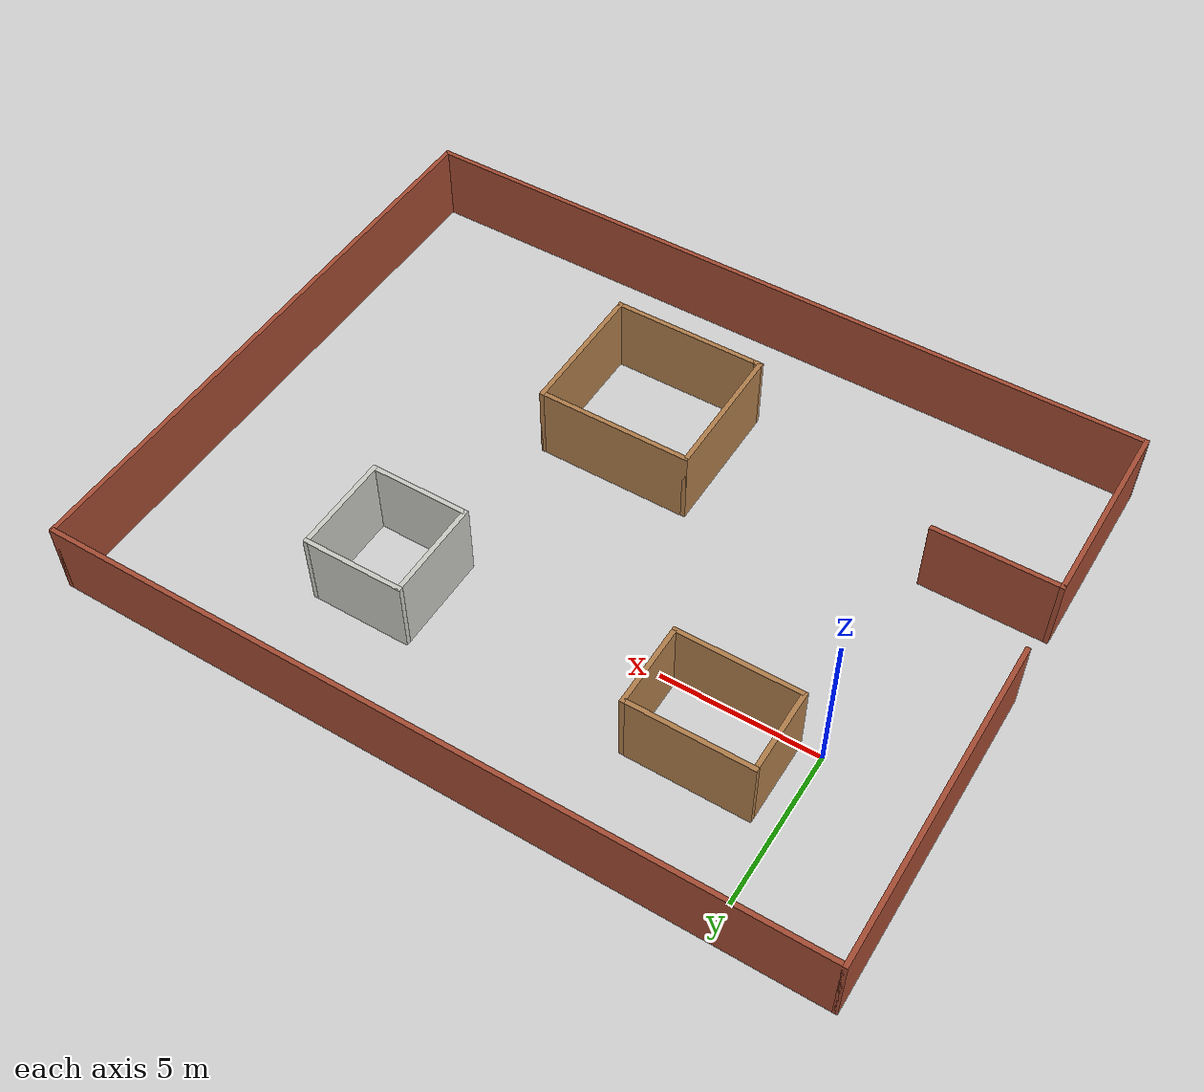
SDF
<?xml version='1.0'?>
<sdf version='1.7'>
  <model name='obstacles101'>
    <pose>8.645 -3.315 0 0 -0 0</pose>
    <link name='Wall_0'>
      <collision name='Wall_0_Collision'>
        <geometry>
          <box>
            <size>10.5 0.15 2.5</size>
          </box>
        </geometry>
        <pose>0 0 1.25 0 -0 0</pose>
      </collision>
      <visual name='Wall_0_Visual'>
        <pose>0 0 1.25 0 -0 0</pose>
        <geometry>
          <box>
            <size>10.5 0.15 2.5</size>
          </box>
        </geometry>
        <material>
          <script>
            <uri>file://media/materials/scripts/gazebo.material</uri>
            <name>Gazebo/Bricks</name>
          </script>
          <ambient>1 1 1 1</ambient>
        </material>
        <meta>
          <layer>0</layer>
        </meta>
      </visual>
      <pose>-12.175 4.25 0 0 -0 1.5708</pose>
    </link>
    <link name='Wall_1'>
      <collision name='Wall_1_Collision'>
        <geometry>
          <box>
            <size>24.5 0.15 2.5</size>
          </box>
        </geometry>
        <pose>0 0 1.25 0 -0 0</pose>
      </collision>
      <visual name='Wall_1_Visual'>
        <pose>0 0 1.25 0 -0 0</pose>
        <geometry>
          <box>
            <size>24.5 0.15 2.5</size>
          </box>
        </geometry>
        <material>
          <script>
            <uri>file://media/materials/scripts/gazebo.material</uri>
            <name>Gazebo/Bricks</name>
          </script>
          <ambient>1 1 1 1</ambient>
        </material>
        <meta>
          <layer>0</layer>
        </meta>
      </visual>
      <pose>0 9.425 0 0 -0 0</pose>
    </link>
    <link name='Wall_2'>
      <collision name='Wall_2_Collision'>
        <geometry>
          <box>
            <size>19 0.15 2.5</size>
          </box>
        </geometry>
        <pose>0 0 1.25 0 -0 0</pose>
      </collision>
      <visual name='Wall_2_Visual'>
        <pose>0 0 1.25 0 -0 0</pose>
        <geometry>
          <box>
            <size>19 0.15 2.5</size>
          </box>
        </geometry>
        <material>
          <script>
            <uri>file://media/materials/scripts/gazebo.material</uri>
            <name>Gazebo/Bricks</name>
          </script>
          <ambient>1 1 1 1</ambient>
        </material>
        <meta>
          <layer>0</layer>
        </meta>
      </visual>
      <pose>12.175 -0 0 0 -0 -1.5708</pose>
    </link>
    <link name='Wall_26'>
      <collision name='Wall_26_Collision'>
        <geometry>
          <box>
            <size>6.25 0.15 2.5</size>
          </box>
        </geometry>
        <pose>0 0 1.25 0 -0 0</pose>
      </collision>
      <visual name='Wall_26_Visual'>
        <pose>0 0 1.25 0 -0 0</pose>
        <geometry>
          <box>
            <size>6.25 0.15 2.5</size>
          </box>
        </geometry>
        <material>
          <script>
            <uri>file://media/materials/scripts/gazebo.material</uri>
            <name>Gazebo/Bricks</name>
          </script>
          <ambient>1 1 1 1</ambient>
        </material>
        <meta>
          <layer>0</layer>
        </meta>
      </visual>
      <pose>-12.175 -6.375 0 0 -0 1.5708</pose>
    </link>
    <link name='Wall_27'>
      <collision name='Wall_27_Collision'>
        <geometry>
          <box>
            <size>4 0.15 2.5</size>
          </box>
        </geometry>
        <pose>0 0 1.25 0 -0 0</pose>
      </collision>
      <visual name='Wall_27_Visual'>
        <pose>0 0 1.25 0 -0 0</pose>
        <geometry>
          <box>
            <size>4 0.15 2.5</size>
          </box>
        </geometry>
        <material>
          <script>
            <uri>file://media/materials/scripts/gazebo.material</uri>
            <name>Gazebo/Bricks</name>
          </script>
          <ambient>1 1 1 1</ambient>
        </material>
        <meta>
          <layer>0</layer>
        </meta>
      </visual>
      <pose>-10.25 -3.325 0 0 -0 0</pose>
    </link>
    <link name='Wall_3'>
      <collision name='Wall_3_Collision'>
        <geometry>
          <box>
            <size>24.5 0.15 2.5</size>
          </box>
        </geometry>
        <pose>0 0 1.25 0 -0 0</pose>
      </collision>
      <visual name='Wall_3_Visual'>
        <pose>0 0 1.25 0 -0 0</pose>
        <geometry>
          <box>
            <size>24.5 0.15 2.5</size>
          </box>
        </geometry>
        <material>
          <script>
            <uri>file://media/materials/scripts/gazebo.material</uri>
            <name>Gazebo/Bricks</name>
          </script>
          <ambient>1 1 1 1</ambient>
        </material>
        <meta>
          <layer>0</layer>
        </meta>
      </visual>
      <pose>0 -9.425 0 0 -0 3.14159</pose>
    </link>
    <link name='Wall_33'>
      <collision name='Wall_33_Collision'>
        <geometry>
          <box>
            <size>4.5 0.15 2.5</size>
          </box>
        </geometry>
        <pose>0 0 1.25 0 -0 0</pose>
      </collision>
      <visual name='Wall_33_Visual'>
        <pose>0 0 1.25 0 -0 0</pose>
        <geometry>
          <box>
            <size>4.5 0.15 2.5</size>
          </box>
        </geometry>
        <material>
          <script>
            <uri>file://media/materials/scripts/gazebo.material</uri>
            <name>Gazebo/Wood</name>
          </script>
          <ambient>1 1 1 1</ambient>
        </material>
        <meta>
          <layer>0</layer>
        </meta>
      </visual>
      <pose>-1.30863 -4.1251 0 0 -0 1.5708</pose>
    </link>
    <link name='Wall_34'>
      <collision name='Wall_34_Collision'>
        <geometry>
          <box>
            <size>5 0.15 2.5</size>
          </box>
        </geometry>
        <pose>0 0 1.25 0 -0 0</pose>
      </collision>
      <visual name='Wall_34_Visual'>
        <pose>0 0 1.25 0 -0 0</pose>
        <geometry>
          <box>
            <size>5 0.15 2.5</size>
          </box>
        </geometry>
        <material>
          <script>
            <uri>file://media/materials/scripts/gazebo.material</uri>
            <name>Gazebo/Wood</name>
          </script>
          <ambient>1 1 1 1</ambient>
        </material>
        <meta>
          <layer>0</layer>
        </meta>
      </visual>
      <pose>1.11637 -1.9501 0 0 -0 0</pose>
    </link>
    <link name='Wall_35'>
      <collision name='Wall_35_Collision'>
        <geometry>
          <box>
            <size>4.5 0.15 2.5</size>
          </box>
        </geometry>
        <pose>0 0 1.25 0 -0 0</pose>
      </collision>
      <visual name='Wall_35_Visual'>
        <pose>0 0 1.25 0 -0 0</pose>
        <geometry>
          <box>
            <size>4.5 0.15 2.5</size>
          </box>
        </geometry>
        <material>
          <script>
            <uri>file://media/materials/scripts/gazebo.material</uri>
            <name>Gazebo/Wood</name>
          </script>
          <ambient>1 1 1 1</ambient>
        </material>
        <meta>
          <layer>0</layer>
        </meta>
      </visual>
      <pose>3.54137 -4.1251 0 0 -0 -1.5708</pose>
    </link>
    <link name='Wall_36'>
      <collision name='Wall_36_Collision'>
        <geometry>
          <box>
            <size>4.75 0.15 2.5</size>
          </box>
        </geometry>
        <pose>0 0 1.25 0 -0 0</pose>
      </collision>
      <visual name='Wall_36_Visual'>
        <pose>0 0 1.25 0 -0 0</pose>
        <geometry>
          <box>
            <size>4.75 0.15 2.5</size>
          </box>
        </geometry>
        <material>
          <script>
            <uri>file://media/materials/scripts/gazebo.material</uri>
            <name>Gazebo/Wood</name>
          </script>
          <ambient>1 1 1 1</ambient>
        </material>
        <meta>
          <layer>0</layer>
        </meta>
      </visual>
      <pose>1.24137 -6.3001 0 0 -0 3.14159</pose>
    </link>
    <link name='Wall_37'>
      <collision name='Wall_37_Collision'>
        <geometry>
          <box>
            <size>0.4 0.15 2.5</size>
          </box>
        </geometry>
        <pose>0 0 1.25 0 -0 0</pose>
      </collision>
      <visual name='Wall_37_Visual'>
        <pose>0 0 1.25 0 -0 0</pose>
        <geometry>
          <box>
            <size>0.4 0.15 2.5</size>
          </box>
        </geometry>
        <material>
          <script>
            <uri>file://media/materials/scripts/gazebo.material</uri>
            <name>Gazebo/Wood</name>
          </script>
          <ambient>1 1 1 1</ambient>
        </material>
        <meta>
          <layer>0</layer>
        </meta>
      </visual>
      <pose>-1.18363 -6.3001 0 0 -0 3.14159</pose>
    </link>
    <link name='Wall_39'>
      <collision name='Wall_39_Collision'>
        <geometry>
          <box>
            <size>2.75 0.15 2.5</size>
          </box>
        </geometry>
        <pose>0 0 1.25 0 -0 0</pose>
      </collision>
      <visual name='Wall_39_Visual'>
        <pose>0 0 1.25 0 -0 0</pose>
        <geometry>
          <box>
            <size>2.75 0.15 2.5</size>
          </box>
        </geometry>
        <material>
          <script>
            <uri>file://media/materials/scripts/gazebo.material</uri>
            <name>Gazebo/Wood</name>
          </script>
          <ambient>1 1 1 1</ambient>
        </material>
        <meta>
          <layer>0</layer>
        </meta>
      </visual>
      <pose>-7.89212 4.64394 0 0 -0 -1.5708</pose>
    </link>
    <link name='Wall_40'>
      <collision name='Wall_40_Collision'>
        <geometry>
          <box>
            <size>4 0.15 2.5</size>
          </box>
        </geometry>
        <pose>0 0 1.25 0 -0 0</pose>
      </collision>
      <visual name='Wall_40_Visual'>
        <pose>0 0 1.25 0 -0 0</pose>
        <geometry>
          <box>
            <size>4 0.15 2.5</size>
          </box>
        </geometry>
        <material>
          <script>
            <uri>file://media/materials/scripts/gazebo.material</uri>
            <name>Gazebo/Wood</name>
          </script>
          <ambient>1 1 1 1</ambient>
        </material>
        <meta>
          <layer>0</layer>
        </meta>
      </visual>
      <pose>-5.96712 3.34394 0 0 -0 0</pose>
    </link>
    <link name='Wall_41'>
      <collision name='Wall_41_Collision'>
        <geometry>
          <box>
            <size>2.75 0.15 2.5</size>
          </box>
        </geometry>
        <pose>0 0 1.25 0 -0 0</pose>
      </collision>
      <visual name='Wall_41_Visual'>
        <pose>0 0 1.25 0 -0 0</pose>
        <geometry>
          <box>
            <size>2.75 0.15 2.5</size>
          </box>
        </geometry>
        <material>
          <script>
            <uri>file://media/materials/scripts/gazebo.material</uri>
            <name>Gazebo/Wood</name>
          </script>
          <ambient>1 1 1 1</ambient>
        </material>
        <meta>
          <layer>0</layer>
        </meta>
      </visual>
      <pose>-4.04212 4.64394 0 0 -0 1.5708</pose>
    </link>
    <link name='Wall_42'>
      <collision name='Wall_42_Collision'>
        <geometry>
          <box>
            <size>4 0.15 2.5</size>
          </box>
        </geometry>
        <pose>0 0 1.25 0 -0 0</pose>
      </collision>
      <visual name='Wall_42_Visual'>
        <pose>0 0 1.25 0 -0 0</pose>
        <geometry>
          <box>
            <size>4 0.15 2.5</size>
          </box>
        </geometry>
        <material>
          <script>
            <uri>file://media/materials/scripts/gazebo.material</uri>
            <name>Gazebo/Wood</name>
          </script>
          <ambient>1 1 1 1</ambient>
        </material>
        <meta>
          <layer>0</layer>
        </meta>
      </visual>
      <pose>-5.96712 5.94394 0 0 -0 3.14159</pose>
    </link>
    <link name='Wall_44'>
      <collision name='Wall_44_Collision'>
        <geometry>
          <box>
            <size>3.25 0.15 2.5</size>
          </box>
        </geometry>
        <pose>0 0 1.25 0 -0 0</pose>
      </collision>
      <visual name='Wall_44_Visual'>
        <pose>0 0 1.25 0 -0 0</pose>
        <geometry>
          <box>
            <size>3.25 0.15 2.5</size>
          </box>
        </geometry>
        <material>
          <script>
            <uri>file://media/materials/scripts/gazebo.material</uri>
            <name>Gazebo/CeilingTiled</name>
          </script>
          <ambient>1 1 1 1</ambient>
        </material>
        <meta>
          <layer>0</layer>
        </meta>
      </visual>
      <pose>4.46318 6.067 0 0 -0 3.14159</pose>
    </link>
    <link name='Wall_45'>
      <collision name='Wall_45_Collision'>
        <geometry>
          <box>
            <size>3.25 0.15 2.5</size>
          </box>
        </geometry>
        <pose>0 0 1.25 0 -0 0</pose>
      </collision>
      <visual name='Wall_45_Visual'>
        <pose>0 0 1.25 0 -0 0</pose>
        <geometry>
          <box>
            <size>3.25 0.15 2.5</size>
          </box>
        </geometry>
        <material>
          <script>
            <uri>file://media/materials/scripts/gazebo.material</uri>
            <name>Gazebo/CeilingTiled</name>
          </script>
          <ambient>1 1 1 1</ambient>
        </material>
        <meta>
          <layer>0</layer>
        </meta>
      </visual>
      <pose>2.91318 4.517 0 0 -0 -1.5708</pose>
    </link>
    <link name='Wall_46'>
      <collision name='Wall_46_Collision'>
        <geometry>
          <box>
            <size>3.25 0.15 2.5</size>
          </box>
        </geometry>
        <pose>0 0 1.25 0 -0 0</pose>
      </collision>
      <visual name='Wall_46_Visual'>
        <pose>0 0 1.25 0 -0 0</pose>
        <geometry>
          <box>
            <size>3.25 0.15 2.5</size>
          </box>
        </geometry>
        <material>
          <script>
            <uri>file://media/materials/scripts/gazebo.material</uri>
            <name>Gazebo/CeilingTiled</name>
          </script>
          <ambient>1 1 1 1</ambient>
        </material>
        <meta>
          <layer>0</layer>
        </meta>
      </visual>
      <pose>4.46318 2.967 0 0 -0 0</pose>
    </link>
    <link name='Wall_49'>
      <collision name='Wall_49_Collision'>
        <geometry>
          <box>
            <size>3.25 0.15 2.5</size>
          </box>
        </geometry>
        <pose>0 0 1.25 0 -0 0</pose>
      </collision>
      <visual name='Wall_49_Visual'>
        <pose>0 0 1.25 0 -0 0</pose>
        <geometry>
          <box>
            <size>3.25 0.15 2.5</size>
          </box>
        </geometry>
        <material>
          <script>
            <uri>file://media/materials/scripts/gazebo.material</uri>
            <name>Gazebo/CeilingTiled</name>
          </script>
          <ambient>1 1 1 1</ambient>
        </material>
        <meta>
          <layer>0</layer>
        </meta>
      </visual>
      <pose>6.01318 4.517 0 0 -0 -1.5708</pose>
    </link>
    <static>1</static>
  </model>
</sdf>
